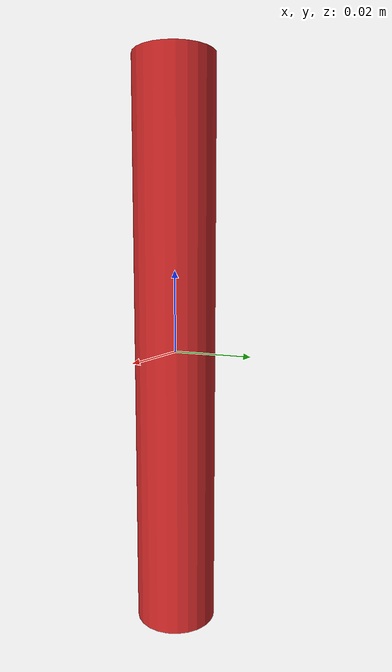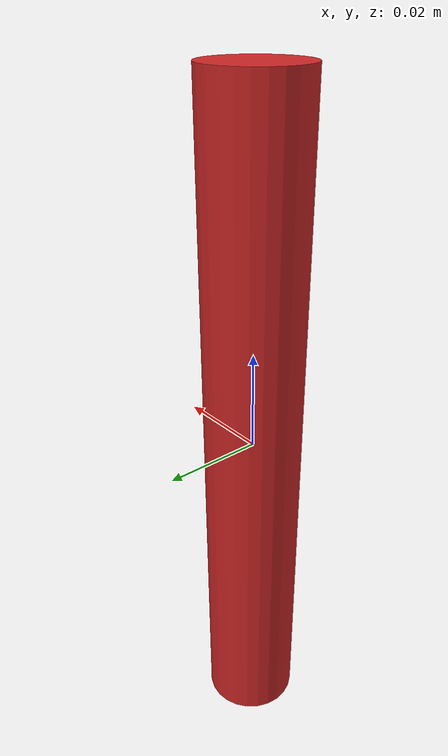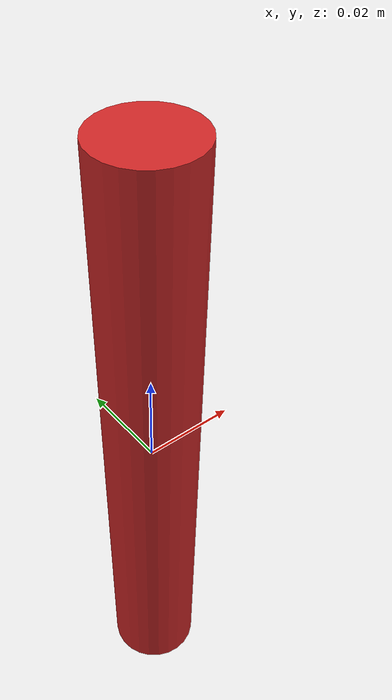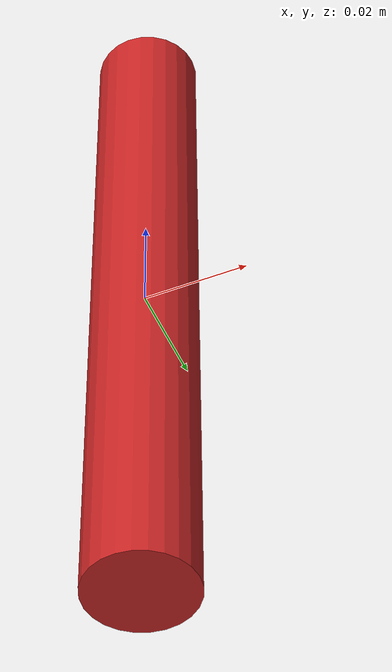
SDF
<?xml version="1.0"?>
<sdf version="1.7">

  <!-- world->ghost_body_y->ghost_body_z_sphere-->
  <model name="pusher">
    <!-- The model for a solid box of uniform density. -->
    <link name="pusher">
      <inertial>
        <mass>0.01</mass>

        <inertia>
          <ixx>1e-2</ixx>
          <ixy>0</ixy>
          <ixz>0</ixz>
          <iyy>1e-2</iyy>
          <iyz>0</iyz>
          <izz>1e-2</izz>
        </inertia>
      </inertial>
      <pose>0 0 0 0 0 0</pose>

      <visual name="visual">
        <geometry>
          <cylinder>
            <radius> 0.01 </radius>
            <length> 0.14 </length>
          </cylinder>
        </geometry>
        <material>
          <diffuse> 0.80078125 0.1484375 0.1484375 1. </diffuse>
        </material>
      </visual>

      <collision name="collision">
        <geometry>
          <cylinder>
            <radius> 0.01 </radius>
            <length> 0.14 </length>
          </cylinder>
        </geometry>
        <surface>
          <friction>
            <ode>
              <mu>0.1</mu>
              <mu2>0.1</mu2>
            </ode>
          </friction>
        </surface>
      </collision>
    </link>
  </model>

</sdf>
